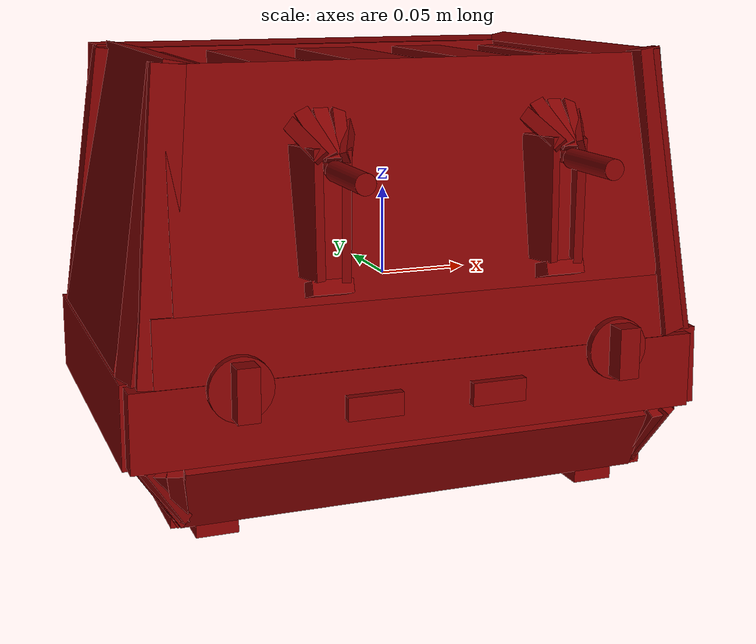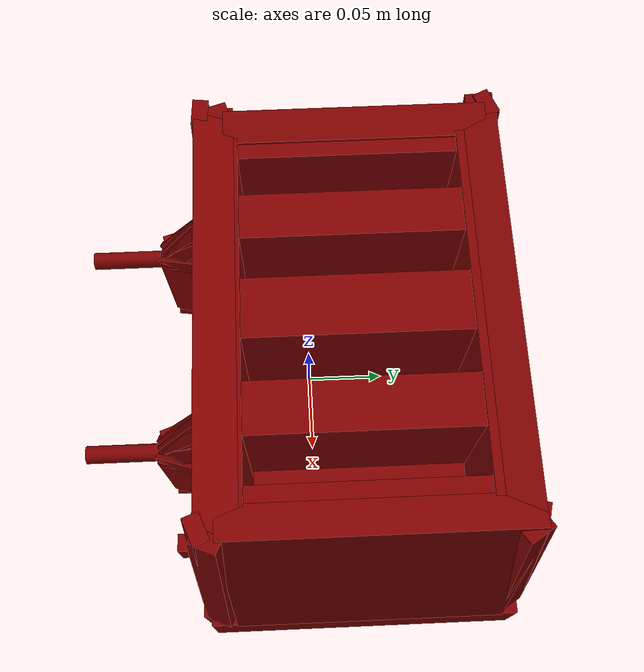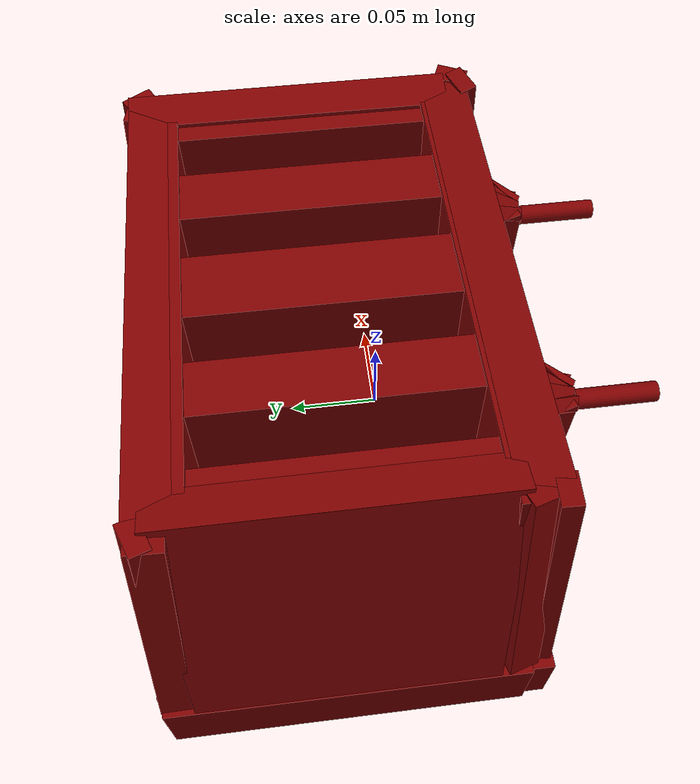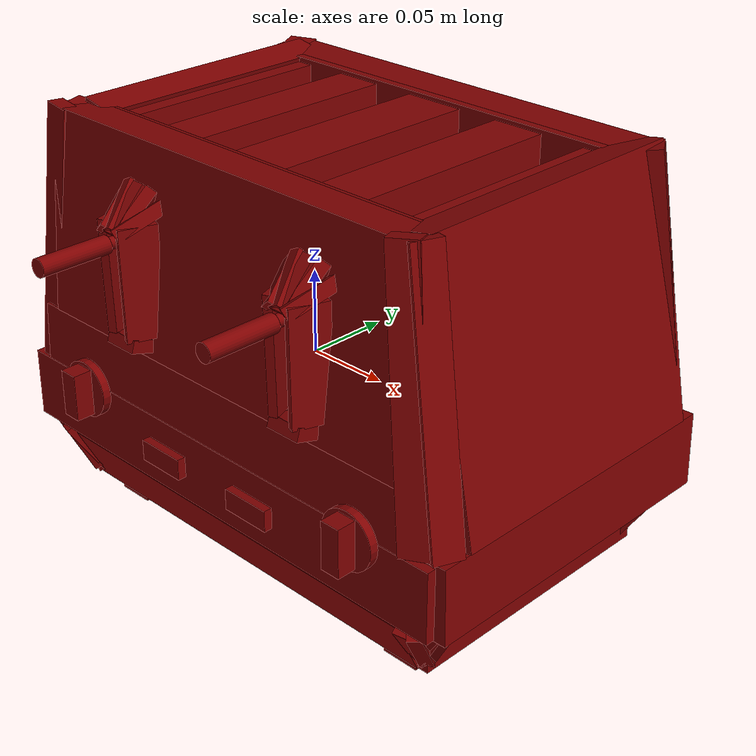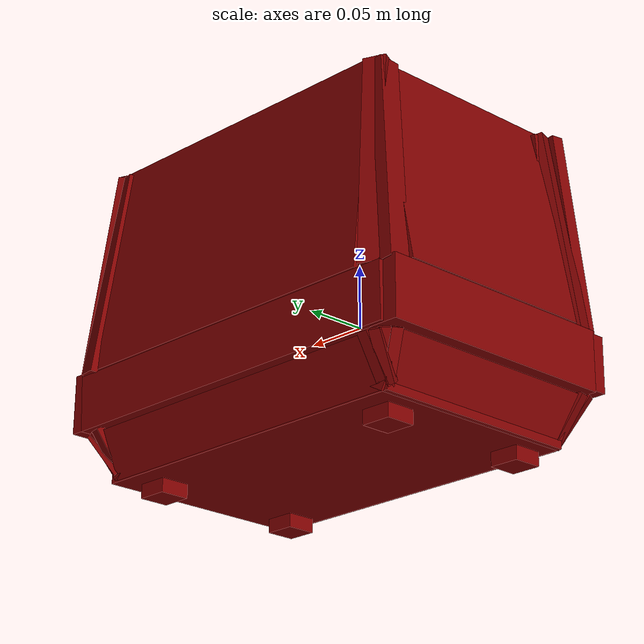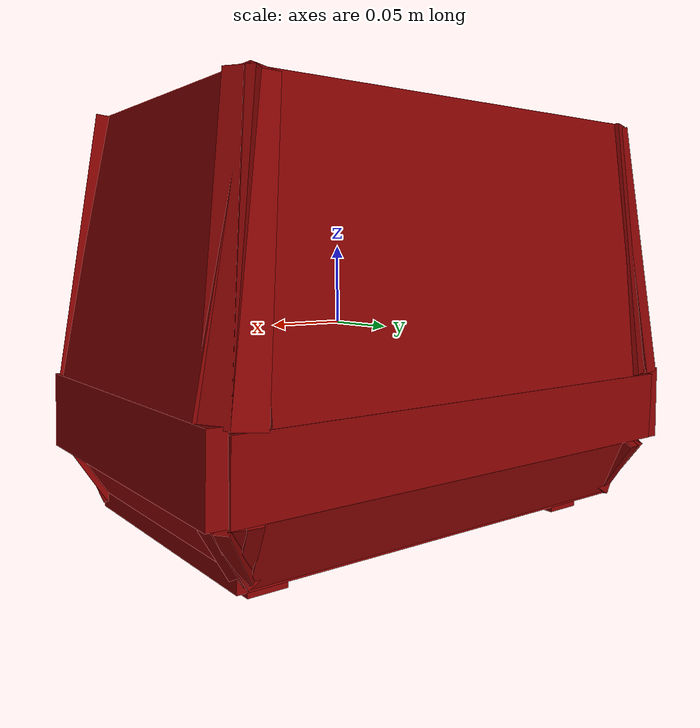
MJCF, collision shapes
<?xml version='1.0' encoding='UTF-8'?>
<mujoco model="model">
  <option timestep="0.002" gravity="0.0 0.0 -9.81"/>
  <compiler angle="radian"/>
  <asset>
    <mesh file="visuals/sideL_button_cancel.obj" name="sideL_button_cancel_vis"/>
    <mesh file="visuals/sideL_knob_doneness.obj" name="sideL_knob_doneness_vis"/>
    <mesh file="visuals/sideL_lever.obj" name="sideL_lever_vis"/>
    <mesh file="visuals/sideR_button_cancel.obj" name="sideR_button_cancel_vis"/>
    <mesh file="visuals/sideR_knob_doneness.obj" name="sideR_knob_doneness_vis"/>
    <mesh file="visuals/sideR_lever.obj" name="sideR_lever_vis"/>
    <mesh file="visuals/Body001.obj" name="Body001_vis"/>
    <mesh file="visuals/Body002.obj" name="Body002_vis"/>
    <texture file="visuals/T_BC001.png" name="Body001_material" type="2d"/>
    <material name="Body001_material" rgba="1 1 1 1.0" texture="Body001_material" shininess="0.5" specular="0.3"/>
    <texture file="visuals/T_BC001.png" name="sideL_button_cancel_material" type="2d"/>
    <material name="sideL_button_cancel_material" rgba="1 1 1 1.0" texture="sideL_button_cancel_material" shininess="0.5" specular="0.3103448502657381"/>
    <texture file="visuals/T_BC001.png" name="sideL_knob_doneness_material" type="2d"/>
    <material name="sideL_knob_doneness_material" rgba="1 1 1 1.0" texture="sideL_knob_doneness_material" shininess="0.5" specular="0.3103448502657381"/>
    <texture file="visuals/T_BC001.png" name="sideL_lever_material" type="2d"/>
    <material name="sideL_lever_material" rgba="1 1 1 1.0" texture="sideL_lever_material" shininess="0.5" specular="0.3103448502657381"/>
    <texture file="visuals/T_BC001.png" name="sideR_button_cancel_material" type="2d"/>
    <material name="sideR_button_cancel_material" rgba="1 1 1 1.0" texture="sideR_button_cancel_material" shininess="0.5" specular="0.3103448502657381"/>
    <texture file="visuals/T_BC001.png" name="sideR_knob_doneness_material" type="2d"/>
    <material name="sideR_knob_doneness_material" rgba="1 1 1 1.0" texture="sideR_knob_doneness_material" shininess="0.5" specular="0.3103448502657381"/>
    <texture file="visuals/T_BC001.png" name="sideR_lever_material" type="2d"/>
    <material name="sideR_lever_material" rgba="1 1 1 1.0" texture="sideR_lever_material" shininess="0.5" specular="0.3103448502657381"/>
    <texture file="visuals/T_BC001.png" name="Body002_material" type="2d"/>
    <material name="Body002_material" rgba="1 1 1 1.0" texture="Body002_material" shininess="0.5" specular="5"/>
  </asset>
  <default>
    <default class="visual">
      <geom conaffinity="0" contype="0" group="1" type="mesh"/>
    </default>
    <default class="collision_1">
      <geom group="0" rgba="0.5 0 0 0.5" solref="0.004 1" solimp="0.998 0.998 0.001"/>
    </default>
    <default class="collision_2">
      <geom group="0" rgba="0.5 0 0 0.5" solref="0.004 1" solimp="0.998 0.998 0.001"/>
    </default>
    <default class="collision_3">
      <geom group="0" rgba="0.5 0 0 0.5" solref="0.004 1" solimp="0.998 0.998 0.001"/>
    </default>
    <default class="collision_4">
      <geom group="0" rgba="0.5 0 0 0.5" solref="0.004 1" solimp="0.998 0.998 0.001"/>
    </default>
    <default class="collision_5">
      <geom group="0" rgba="0.5 0 0 0.5" solref="0.004 1" solimp="0.998 0.998 0.001"/>
    </default>
    <default class="collision_6">
      <geom group="0" rgba="0.5 0 0 0.5" solref="0.004 1" solimp="0.998 0.998 0.001"/>
    </default>
    <default class="collision_7">
      <geom group="0" rgba="0.5 0 0 0.5" solref="0.004 1" solimp="0.998 0.998 0.001"/>
    </default>
    <default class="collision_8">
      <geom group="0" rgba="0.5 0 0 0.5" solref="0.004 1" solimp="0.998 0.998 0.001"/>
    </default>
    <default class="spawn">
      <geom group="0" rgba="1 1 1 0.5" contype="0" conaffinity="0"/>
      <site group="0" rgba="1 1 1 0.5"/>
    </default>
    <default class="region">
      <geom group="1" conaffinity="0" contype="0" rgba="0 1 0 0" mass="0"/>
    </default>
  </default>
  <worldbody>
    <body>
      <body name="object">
        <geom mesh="Body001_vis" type="mesh" solimp="0.998 0.998 0.001" solref="0.001 1" friction="0.95 0.3 0.1" class="visual" material="Body001_material"/>
        <geom type="box" pos="-0.00044674641685560346 0.12026488780975342 -0.09392673522233963" size="0.13447068631649017 0.00393036799505353 0.019632775336503983" quat="0.9799838662147522 -0.1990768313407898 -0.0 0.0" class="collision_1"/>
        <geom type="box" pos="-0.00044674641685560346 -0.06252574175596237 -0.09489482641220093" size="0.13447068631649017 0.00393036799505353 0.019632775336503983" quat="0.975192666053772 0.22135789692401886 0.0 0.0" class="collision_1"/>
        <geom type="box" pos="0.1409631073474884 0.030339915305376053 -0.09131582826375961" size="0.006311427336186171 0.08797916024923325 0.02123778685927391" quat="0.9626746773719788 0.0 0.2706611156463623 0.0" class="collision_1"/>
        <geom type="box" pos="-0.14122942090034485 0.030339915305376053 -0.09276559948921204" size="0.006311427336186171 0.08797916024923325 0.02123778685927391" quat="0.9673653244972229 0.0 -0.2533857524394989 0.0" class="collision_1"/>
        <geom type="box" pos="-0.11325013637542725 -0.03796686977148056 -0.11897148936986923" size="0.011780587956309319 0.011780587956309319 0.005922116804867983" quat="1.0 0.0 0.0 0.0" class="collision_1"/>
        <geom type="box" pos="0.11429183185100555 -0.03796686977148056 -0.11897148936986923" size="0.011780587956309319 0.011780587956309319 0.005922116804867983" quat="1.0 0.0 0.0 0.0" class="collision_1"/>
        <geom type="box" pos="-0.11325013637542725 0.0884881243109703 -0.11897148936986923" size="0.011780587956309319 0.011780587956309319 0.005922116804867983" quat="1.0 0.0 0.0 0.0" class="collision_1"/>
        <geom type="box" pos="0.11429183185100555 0.0884881243109703 -0.11897148936986923" size="0.011780587956309319 0.011780587956309319 0.005922116804867983" quat="1.0 0.0 0.0 0.0" class="collision_1"/>
        <geom type="box" pos="0.13939955830574036 0.03420979157090187 0.04827224835753441" size="0.010647835209965706 0.08951014280319214 0.0805027037858963" quat="0.9954463839530945 0.0 -0.09532330930233002 0.0" class="collision_1"/>
        <geom type="box" pos="0.15416470170021057 0.03115106374025345 -0.052045706659555435" size="0.010647837072610855 0.10399692505598068 0.02255273051559925" quat="0.9999216794967651 0.0 -0.012517278082668781 0.0" class="collision_1"/>
        <geom type="box" pos="-0.1394502818584442 0.03421943262219429 0.048004716634750366" size="0.01064783614128828 0.0826282873749733 0.0805027037858963" quat="0.9953948855400085 0.0 0.09585954248905182 0.0" class="collision_1"/>
        <geom type="box" pos="-0.15400944650173187 0.034196414053440094 -0.053195323795080185" size="0.011610445566475391 0.10006249696016312 0.02299119159579277" quat="1.0 0.0 0.0 0.0" class="collision_1"/>
        <geom type="box" pos="0.0008880893001332879 0.11890549212694168 0.04633348807692528" size="0.13319306075572968 0.012511109001934528 0.0805027037858963" quat="0.9988362789154053 0.048229116946458817 0.0 0.0" class="collision_1"/>
        <geom type="box" pos="-0.00032237544655799866 0.1267222762107849 -0.05385943502187729" size="0.1542205959558487 0.010496157221496105 0.02122410573065281" quat="0.9998803734779358 -0.015469263307750225 -0.0 0.0" class="collision_1"/>
        <geom type="box" pos="-0.004979799035936594 -0.06478356570005417 -0.01428462378680706" size="0.1455572247505188 0.012511109933257103 0.0184781551361084" quat="0.9997701048851013 -0.021442122757434845 -0.0 0.0" class="collision_1"/>
        <geom type="box" pos="-0.002841375535354018 -0.06756524741649628 -0.052719760686159134" size="0.16078045964241028 0.010827445425093174 0.02138606086373329" quat="1.0 0.0 0.0 0.0" class="collision_1"/>
        <geom type="box" pos="-0.0026012654416263103 -0.05928958207368851 0.06512191146612167" size="0.1367025375366211 0.012511109001934528 0.061788905411958694" quat="0.9992153644561768 -0.039606720209121704 -0.0 0.0" class="collision_1"/>
        <geom type="box" pos="0.00032845139503479004 0.02971804141998291 -0.108138307929039" size="0.14030978083610535 0.08675547689199448 0.005922204814851284" quat="1.0 0.0 0.0 0.0" class="collision_1"/>
        <geom type="box" pos="0.1464659571647644 -0.057390689849853516 -0.09268210083246231" size="0.0031624019611626863 0.004117121919989586 0.021120190620422363" quat="0.9464960694313049 0.059724461287260056 0.27581343054771423 -0.15654131770133972" class="collision_1"/>
        <geom type="box" pos="-0.10911621898412704 0.02752969041466713 0.046505801379680634" size="0.005207378417253494 0.07103536278009415 0.07608040422201157" quat="1.0 0.0 0.0 0.0" class="collision_1"/>
        <geom type="box" pos="-0.06283487379550934 0.02752969041466713 0.046795669943094254" size="0.014857487753033638 0.07103536278009415 0.07636824995279312" quat="1.0 0.0 0.0 0.0" class="collision_1"/>
        <geom type="box" pos="-0.002341354265809059 0.02752969041466713 0.046795669943094254" size="0.019084839150309563 0.07103536278009415 0.07637011259794235" quat="1.0 0.0 0.0 0.0" class="collision_1"/>
        <geom type="box" pos="0.05908895283937454 0.02752969041466713 0.046795669943094254" size="0.016136080026626587 0.0710362121462822 0.07636921852827072" quat="1.0 0.0 0.0 0.0" class="collision_1"/>
        <geom type="box" pos="0.10914602130651474 0.02752969041466713 0.046505801379680634" size="0.005973801016807556 0.07103536278009415 0.0760800763964653" quat="1.0 0.0 0.0 0.0" class="collision_1"/>
        <geom type="box" pos="-0.07091841846704483 -0.07970783859491348 0.053236499428749084" size="0.0027334047481417656 0.010841797105967999 0.033434223383665085" quat="0.987780749797821 0.003852688940241933 -0.0117016127333045 0.15536220371723175" class="collision_1"/>
        <geom type="box" pos="-0.05002918466925621 -0.08060146123170853 0.052149973809719086" size="0.0023296447470784187 0.011139070615172386 0.033431366086006165" quat="0.9844239354133606 0.00915802177041769 0.001750251860357821 -0.1755637228488922" class="collision_1"/>
        <geom type="box" pos="-0.06045627221465111 -0.0799240991473198 0.0919889509677887" size="0.003909409511834383 0.015574048273265362 0.0017762052593752742" quat="0.9199158549308777 0.39211586117744446 0.0 0.0" class="collision_1"/>
        <geom type="box" pos="-0.06045627221465111 -0.0810844674706459 0.014271676540374756" size="0.010975378565490246 0.008613021112978458 0.0038106541614979506" quat="0.9888113141059875 -0.1491716057062149 -0.0 0.0" class="collision_1"/>
        <geom type="box" pos="0.14365535974502563 -0.061014533042907715 -0.09142813086509705" size="0.0031624017283320427 0.004117121919989586 0.0205256137996912" quat="0.9081395864486694 0.11606573313474655 0.294817179441452 -0.2736678719520569" class="collision_1"/>
        <geom type="box" pos="0.13684366643428802 -0.06407270580530167 -0.09433968365192413" size="0.0031624024268239737 0.004117121919989586 0.02069542184472084" quat="0.7354452013969421 0.18512742221355438 0.2251061499118805 -0.6116988062858582" class="collision_1"/>
        <geom type="box" pos="0.14234477281570435 -0.06447140127420425 -0.09276073426008224" size="0.0031624017283320427 0.004117121919989586 0.0205256137996912" quat="0.8550456166267395 0.1904042661190033 0.23266524076461792 -0.42250457406044006" class="collision_1"/>
        <geom type="box" pos="-0.13692668080329895 -0.06513560563325882 -0.09358090162277222" size="0.0031624019611626863 0.004117121919989586 0.021120190620422363" quat="0.5760980248451233 0.2337408810853958 0.15813055634498596 -0.7671186327934265" class="collision_1"/>
        <geom type="box" pos="-0.14067403972148895 -0.062491945922374725 -0.09232693165540695" size="0.0031624017283320427 0.004117121919989586 0.0205256137996912" quat="0.46744412183761597 0.28760191798210144 0.13294190168380737 -0.8252924084663391" class="collision_1"/>
        <geom type="box" pos="-0.1449662446975708 -0.05844539776444435 -0.09357921779155731" size="0.0031624024268239737 0.004117121919989586 0.021619513630867004" quat="0.10904650390148163 0.2893645167350769 0.03482958301901817 -0.9503493905067444" class="collision_1"/>
        <geom type="box" pos="-0.1440049558877945 -0.06467307358980179 -0.0912436842918396" size="0.0031624019611626863 0.004117121919989586 0.0205256137996912" quat="0.2321225255727768 0.2970905303955078 0.07213438302278519 -0.923392117023468" class="collision_1"/>
        <geom type="box" pos="-0.14460401237010956 0.1171574667096138 -0.09381018579006195" size="0.0031624019611626863 0.004117121919989586 0.021120190620422363" quat="0.20623697340488434 -0.2722799777984619 0.07418638467788696 0.9369238615036011" class="collision_1"/>
        <geom type="box" pos="-0.14142736792564392 0.12046512961387634 -0.09255621582269669" size="0.0031624017283320427 0.004117121919989586 0.0205256137996912" quat="0.3211776614189148 -0.2882862091064453 0.1314513236284256 0.8924441337585449" class="collision_1"/>
        <geom type="box" pos="-0.13678191602230072 0.1241006925702095 -0.09380850195884705" size="0.0031624019611626863 0.004117121919989586 0.0198535043746233" quat="0.6496307253837585 -0.2150305062532425 0.1967407464981079 0.7021644115447998" class="collision_1"/>
        <geom type="box" pos="-0.14288872480392456 0.12300888448953629 -0.09319306164979935" size="0.0031624017283320427 0.004117121919989586 0.018914194777607918" quat="0.5489631295204163 -0.2483569085597992 0.1782834827899933 0.77792888879776" class="collision_1"/>
        <geom type="box" pos="0.13727596402168274 0.12121548503637314 -0.09327942878007889" size="0.0031624019611626863 0.004117121919989586 0.021120190620422363" quat="0.7339819073677063 -0.1708524525165558 0.2246096134185791 0.6177625060081482" class="collision_1"/>
        <geom type="box" pos="0.14129310846328735 0.11900316923856735 -0.09202545881271362" size="0.0031624017283320427 0.004117121919989586 0.0205256137996912" quat="0.7980930209159851 -0.14869031310081482 0.2797849476337433 0.5125027894973755" class="collision_1"/>
        <geom type="box" pos="0.14600712060928345 0.1154569610953331 -0.09327774494886398" size="0.0031624017283320427 0.004117121919989586 0.0198535043746233" quat="0.9428374171257019 -0.050826843827962875 0.2869871258735657 0.16159389913082123" class="collision_1"/>
        <geom type="box" pos="0.14337195456027985 0.12107310444116592 -0.09266230463981628" size="0.0031624017283320427 0.004117121919989586 0.018914194777607918" quat="0.9090948104858398 -0.08850280195474625 0.29263195395469666 0.2829849123954773" class="collision_1"/>
        <geom type="box" pos="0.13670752942562103 -0.06878319382667542 0.04974736273288727" size="0.00865440908819437 0.005012230481952429 0.08033323287963867" quat="0.9791340827941895 -0.03711995109915733 -0.05296817794442177 0.19264717400074005" class="collision_1"/>
        <geom type="box" pos="0.14546415209770203 -0.0627499595284462 0.04974736273288727" size="0.008654408156871796 0.005012230947613716 0.08033324033021927" quat="0.8364589214324951 -0.05639462545514107 -0.053623031824827194 0.5424764752388" class="collision_1"/>
        <geom type="box" pos="0.14436012506484985 0.12271402776241302 0.04757818952202797" size="0.00865440908819437 0.005012230481952429 0.08033324033021927" quat="0.4838537871837616 -0.03958134725689888 -0.06159912422299385 0.8720805048942566" class="collision_1"/>
        <geom type="box" pos="0.13612137734889984 0.12779466807842255 0.046435002237558365" size="0.00865440908819437 0.005012230481952429 0.08033323287963867" quat="0.12437501549720764 -0.04715656861662865 -0.055987101048231125 0.9895314574241638" class="collision_1"/>
        <geom type="box" pos="-0.13884337246418 0.1251833438873291 0.04757818952202797" size="0.00865440908819437 0.0050122300162911415 0.08033324033021927" quat="0.1917499154806137 -0.014288317412137985 0.0478287898004055 -0.9801735877990723" class="collision_1"/>
        <geom type="box" pos="-0.14797596633434296 0.12035005539655685 0.046435002237558365" size="0.00865440908819437 0.005012230481952429 0.08033323287963867" quat="0.7093334197998047 -0.015710432082414627 0.07149460166692734 -0.7010619044303894" class="collision_1"/>
        <geom type="box" pos="-0.1466149240732193 -0.05657394975423813 0.04757818952202797" size="0.00865440908819437 0.005012230947613716 0.08033324033021927" quat="0.802619218826294 -0.058406613767147064 0.04670156538486481 -0.5917854309082031" class="collision_1"/>
        <geom type="box" pos="-0.14259599149227142 -0.0674305334687233 0.04796357452869415" size="0.00865440908819437 0.005012230481952429 0.08033323287963867" quat="0.9979035258293152 -0.03159482032060623 0.043148621916770935 -0.03644896671175957" class="collision_1"/>
        <geom type="box" pos="-0.06592980772256851 -0.07991290837526321 0.09256616234779358" size="0.0038907870184630156 0.015574048273265362 0.0017762051429599524" quat="0.8960186839103699 0.3767300546169281 -0.23089206218719482 0.04374747350811958" class="collision_1"/>
        <geom type="box" pos="-0.07169084250926971 -0.0791320875287056 0.08981968462467194" size="0.003890787251293659 0.015574049204587936 0.0017762051429599524" quat="0.87903892993927 0.3058508634567261 -0.3611479699611664 0.05760198086500168" class="collision_1"/>
        <geom type="box" pos="-0.05315784737467766 -0.07887665927410126 0.09104868769645691" size="0.003909409511834383 0.015574048273265362 0.0017762052593752742" quat="0.8970921039581299 0.3964369595050812 0.1949540227651596 0.007511969655752182" class="collision_1"/>
        <geom type="box" pos="-0.049283940345048904 -0.07934129238128662 0.08806617558002472" size="0.003909409511834383 0.015574048273265362 0.0017762052593752742" quat="0.7933098077774048 0.2993110120296478 0.5294592380523682 -0.02730184607207775" class="collision_1"/>
        <geom type="box" pos="0.05896570533514023 -0.07970783859491348 0.053236499428749084" size="0.002625924302265048 0.010963121429085732 0.03343268856406212" quat="0.9849674105644226 0.00633706571534276 -0.008766614831984043 0.17240123450756073" class="collision_1"/>
        <geom type="box" pos="0.0806637853384018 -0.08060146123170853 0.052149973809719086" size="0.0023296447470784187 0.011139070615172386 0.033431366086006165" quat="0.9844239354133606 0.00915802177041769 0.001750251860357821 -0.1755637228488922" class="collision_1"/>
        <geom type="box" pos="0.0702366977930069 -0.0799240991473198 0.0919889509677887" size="0.003909409511834383 0.015574048273265362 0.0017762052593752742" quat="0.9199158549308777 0.39211586117744446 0.0 0.0" class="collision_1"/>
        <geom type="box" pos="0.0702366977930069 -0.0810844674706459 0.014271676540374756" size="0.010975378565490246 0.008613021112978458 0.0038106541614979506" quat="0.9888113141059875 -0.1491716057062149 -0.0 0.0" class="collision_1"/>
        <geom type="box" pos="0.06476316601037979 -0.07991290837526321 0.09256616234779358" size="0.0038907870184630156 0.015574048273265362 0.0017762051429599524" quat="0.8960186839103699 0.3767300546169281 -0.23089206218719482 0.04374747350811958" class="collision_1"/>
        <geom type="box" pos="0.05900213122367859 -0.0791320875287056 0.08981968462467194" size="0.003890787251293659 0.015574049204587936 0.0017762051429599524" quat="0.87903892993927 0.3058508634567261 -0.3611479699611664 0.05760198086500168" class="collision_1"/>
        <geom type="box" pos="0.07753512263298035 -0.07887665927410126 0.09104868769645691" size="0.003909409511834383 0.015574048273265362 0.0017762052593752742" quat="0.8970921039581299 0.3964369595050812 0.1949540227651596 0.007511969655752182" class="collision_1"/>
        <geom type="box" pos="0.0814090371131897 -0.07934129238128662 0.08806617558002472" size="0.003909409511834383 0.015574048273265362 0.0017762052593752742" quat="0.7933098077774048 0.2993110120296478 0.5294592380523682 -0.02730184607207775" class="collision_1"/>
        <geom type="box" pos="0.0 -0.048256926238536835 0.042633622884750366" size="0.11826896667480469 0.008620768785476685 0.08299725502729416" quat="1.0 0.0 0.0 0.0" class="collision_1"/>
        <geom type="box" pos="0.0 0.10581551492214203 0.042633622884750366" size="0.11826896667480469 0.008620768785476685 0.08299720287322998" quat="1.0 0.0 0.0 0.0" class="collision_1"/>
        <body name="sideL_button_cancel">
          <joint axis="0.0 1.0 0.0" pos="-0.03575551509857178 -0.08017919957637787 -0.05030425637960434" limited="true" name="sideL_button_cancel_joint" range="0.0 0.003" type="slide" damping="1" frictionloss="1" armature=".01" stiffness="4" springref="-1"/>
          <geom mesh="sideL_button_cancel_vis" type="mesh" solimp="0.998 0.998 0.001" solref="0.001 1" friction="0.95 0.3 0.1" class="visual" material="sideL_button_cancel_material"/>
          <geom class="collision_2" type="box" pos="-0.03601318597793579 -0.08363092690706253 -0.05012350156903267" size="0.015511701814830303 0.0025674805510789156 0.006430113222450018" quat="1.0 0.0 0.0 0.0" name="sideL_button_cancel_main"/>
        </body>
        <body name="sideL_knob_doneness">
          <joint axis="0.0 1.0 0.0" pos="-0.10707026720046997 -0.08434509485960007 -0.03358955308794975" limited="true" name="sideL_knob_doneness_joint" range="0.0 5.201081170943102" type="hinge" damping="0.05" frictionloss="0.75" armature="1"/>
          <geom mesh="sideL_knob_doneness_vis" type="mesh" solimp="0.998 0.998 0.001" solref="0.001 1" friction="0.95 0.3 0.1" class="visual" material="sideL_knob_doneness_material"/>
          <geom type="cylinder" pos="-0.10715775191783905 -0.08115532994270325 -0.03383712098002434" size="0.017344027757644653 0.0025102447252720594" quat="0.7071068286895752 -0.7071067690849304 -0.0 0.0" class="collision_3" friction="100 0.5 0.01"/>
          <geom class="collision_3" type="box" pos="-0.10666624456644058 -0.08937132358551025 -0.03361452743411064" size="0.006066915113478899 0.005955501925200224 0.014460868202149868" quat="1.0 0.0 0.0 0.0" name="sideL_knob_doneness_main" friction="100 0.5 0.01"/>
        </body>
        <body name="sideL_lever">
          <joint axis="0.0 0.0 -1.0" pos="-0.06070128083229065 -0.09401111304759979 0.0756411999464035" limited="true" name="sideL_lever_joint" range="0.0 0.05" type="slide" damping="1" frictionloss="1" armature=".1" stiffness="2.8" springref="-0.5"/>
          <geom class="region" name="reg_sideL_slotR" type="box" pos="-0.034039558842778206 0.027982596307992935 0.12544087134301662" size="0.012141059920191766 0.06485151669383049 0.07600008679926396"/>
          <geom class="region" name="reg_sideL_slotL" type="box" pos="-0.08720257133245468 0.027982596307992935 0.12544087134301662" size="0.015308445155620576 0.06485151669383049 0.07600008679926396"/>
          <geom mesh="sideL_lever_vis" type="mesh" solimp="0.998 0.998 0.001" solref="0.001 1" friction="0.95 0.3 0.1" class="visual" material="sideL_lever_material"/>
          <geom class="collision_4" type="cylinder" pos="-0.06061257794499397 -0.11512642353773117 0.07574426382780075" size="0.005340807605534792 0.021487968042492867" quat="0.7071068286895752 -0.7071067690849304 -0.0 0.0" name="sideL_lever_handle"/>
          <geom type="cylinder" pos="-0.060659583657979965 -0.09300929307937622 0.07557299733161926" size="0.0035236342810094357 0.010406561195850372" quat="0.7071068286895752 -0.7071067690849304 -0.0 0.0" class="collision_4"/>
          <geom class="collision_4" type="box" pos="-0.0908137634396553 0.028542371466755867 0.04555044323205948" size="0.012499998323619366 0.0668611153960228 0.0010043121874332428" quat="1.0 0.0 0.0 0.0" name="sideL_slotL_floor"/>
          <geom class="collision_4" type="box" pos="-0.03456781432032585 0.028542371466755867 0.04555044323205948" size="0.012499998323619366 0.0668611153960228 0.0010043015936389565" quat="1.0 0.0 0.0 0.0" name="sideL_slotR_floor"/>
        </body>
        <body name="sideR_button_cancel">
          <joint axis="0.0 1.0 0.0" pos="0.03482136130332947 -0.08017919957637787 -0.05030425637960434" limited="true" name="sideR_button_cancel_joint" range="0.0 0.003" type="slide" damping="1" frictionloss="1" armature=".01" stiffness="4" springref="-1"/>
          <geom mesh="sideR_button_cancel_vis" type="mesh" solimp="0.998 0.998 0.001" solref="0.001 1" friction="0.95 0.3 0.1" class="visual" material="sideR_button_cancel_material"/>
          <geom class="collision_5" type="box" pos="0.03484227508306503 -0.08363092690706253 -0.05012350156903267" size="0.015511712990701199 0.0025674805510789156 0.006430113222450018" quat="1.0 0.0 0.0 0.0" name="sideR_button_cancel_main"/>
        </body>
        <body name="sideR_knob_doneness">
          <joint axis="0.0 1.0 0.0" pos="0.10801281034946442 -0.08434509485960007 -0.03433068469166756" limited="true" name="sideR_knob_doneness_joint" range="0.0 5.201081170943102" type="hinge" damping="0.05" frictionloss="0.75" armature="1"/>
          <geom mesh="sideR_knob_doneness_vis" type="mesh" solimp="0.998 0.998 0.001" solref="0.001 1" friction="0.95 0.3 0.1" class="visual" material="sideR_knob_doneness_material"/>
          <geom class="collision_6" type="box" pos="0.10850415378808975 -0.08937132358551025 -0.03399918973445892" size="0.006066915113478899 0.005955501925200224 0.014460868202149868" quat="1.0 0.0 0.0 0.0" name="sideR_knob_doneness_main" friction="100 0.5 0.01"/>
          <geom type="cylinder" pos="0.10801264643669128 -0.08115532994270325 -0.03422178328037262" size="0.017344027757644653 0.0025102447252720594" quat="0.7071068286895752 -0.7071067690849304 -0.0 0.0" class="collision_6" friction="100 0.5 0.01"/>
        </body>
        <body name="sideR_lever">
          <joint axis="0.0 0.0 -1.0" pos="0.06959846615791321 -0.09401111304759979 0.0756411999464035" limited="true" name="sideR_lever_joint" range="0.0 0.05" type="slide" damping="1" frictionloss="1" armature=".1" stiffness="2.8" springref="-0.5"/>
          <geom class="region" name="reg_sideR_slotR" type="box" pos="0.08918516337871552 0.027982596307992935 0.12544087134301662" size="0.01287737286090851 0.06485151669383049 0.07600008679926396"/>
          <geom class="region" name="reg_sideR_slotL" type="box" pos="0.030072106048464775 0.027982596307992935 0.12544087134301662" size="0.012219954118132592 0.06485151669383049 0.07600008679926396"/>
          <geom mesh="sideR_lever_vis" type="mesh" solimp="0.998 0.998 0.001" solref="0.001 1" friction="0.95 0.3 0.1" class="visual" material="sideR_lever_material"/>
          <geom class="collision_7" type="cylinder" pos="0.06966513395309448 -0.11512642353773117 0.07569434493780136" size="0.005340807605534792 0.021487968042492867" quat="0.7071068286895752 -0.7071067690849304 -0.0 0.0" name="sideR_lever_handle"/>
          <geom type="cylinder" pos="0.06956285983324051 -0.09300929307937622 0.07567412406206131" size="0.0035236342810094357 0.010406561195850372" quat="0.7071068286895752 -0.7071067690849304 -0.0 0.0" class="collision_7"/>
          <geom class="collision_7" type="box" pos="0.029887543991208076 0.028542371466755867 0.04555044323205948" size="0.012499998323619366 0.06686118245124817 0.001004313351586461" quat="1.0 0.0 0.0 0.0" name="sideR_slotL_floor"/>
          <geom class="collision_7" type="box" pos="0.08926278352737427 0.028542371466755867 0.045550450682640076" size="0.012499998323619366 0.06686105579137802 0.001004310674034059" quat="1.0 0.0 0.0 0.0" name="sideR_slotR_floor"/>
        </body>
        <body name="Body002">
          <geom mesh="Body002_vis" type="mesh" solimp="0.998 0.998 0.001" solref="0.001 1" friction="0.95 0.3 0.1" class="visual" material="Body002_material"/>
        </body>
        <geom class="region" name="reg_main" type="box" pos="3.725290298461914e-09 0.028689749538898468 0.0" size="0.16393542087078095 0.10725100880861282 0.12576745247840881"/>
      </body>
    </body>
  </worldbody>
  <actuator>
    <motor name="sideL_button_cancel_joint_actuator" joint="sideL_button_cancel_joint" gear="0.2"/>
    <motor name="sideL_knob_doneness_joint_actuator" joint="sideL_knob_doneness_joint" gear="5"/>
    <motor name="sideL_lever_joint_actuator" joint="sideL_lever_joint" gear="1.5"/>
    <motor name="sideR_button_cancel_joint_actuator" joint="sideR_button_cancel_joint" gear="0.2"/>
    <motor name="sideR_knob_doneness_joint_actuator" joint="sideR_knob_doneness_joint" gear="5"/>
    <motor name="sideR_lever_joint_actuator" joint="sideR_lever_joint" gear="1.5"/>
  </actuator>
</mujoco>
